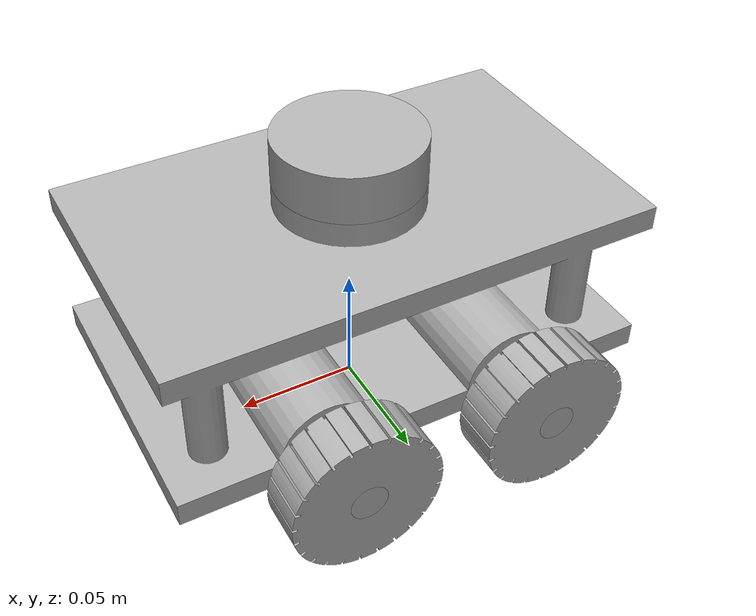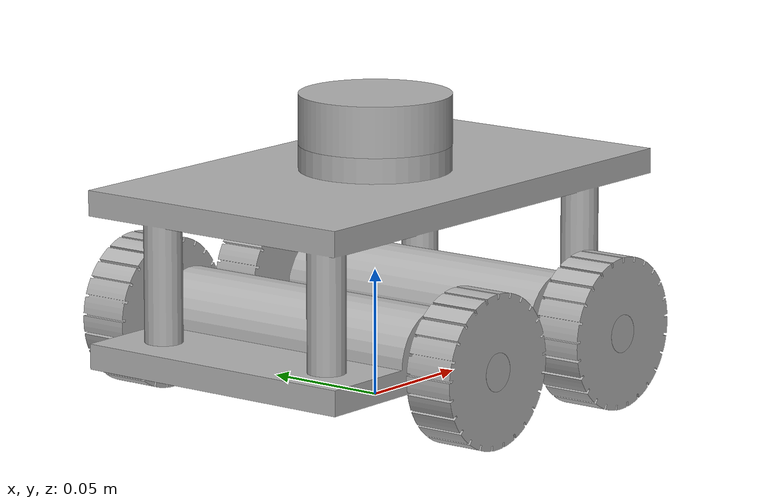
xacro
<?xml version="1.0" ?>
<robot name="ghumi" xmlns:xacro="http://www.ros.org/wiki/xacro">

<xacro:include filename="$(find ghumi_description)/urdf/materials.xacro" />
<xacro:include filename="$(find ghumi_description)/urdf/ghumi.trans" />
<xacro:include filename="$(find ghumi_description)/urdf/ghumi.gazebo" />
<link name="base_link">
  <inertial>
    <origin rpy="0 0 0" xyz="-3.875033510486827e-14 -2.5418389704730536e-17 0.0523602148573551"/>
    <mass value="0.75855661596039"/>
    <inertia ixx="0.001573" ixy="0.0" ixz="0.0" iyy="0.002826" iyz="-0.0" izz="0.003249"/>
  </inertial>
  <visual>
    <origin rpy="0 0 0" xyz="0 0 0"/>
    <geometry>
      <mesh filename="package://ghumi_description/meshes/base_link.stl" scale="0.001 0.001 0.001"/>
    </geometry>
    <material name="silver"/>
  </visual>
  <collision>
    <origin rpy="0 0 0" xyz="0 0 0"/>
    <geometry>
      <mesh filename="package://ghumi_description/meshes/base_link.stl" scale="0.001 0.001 0.001"/>
    </geometry>
  </collision>
</link>

<link name="wheel_1_1">
  <inertial>
    <origin rpy="0 0 0" xyz="5.3290705182007514e-14 0.009999999999999995 -1.734723475976807e-17"/>
    <mass value="0.05512221016696118"/>
    <inertia ixx="1.5e-05" ixy="0.0" ixz="0.0" iyy="2.6e-05" iyz="-0.0" izz="1.5e-05"/>
  </inertial>
  <visual>
    <origin rpy="0 0 0" xyz="-0.04 0.09 -0.03"/>
    <geometry>
      <mesh filename="package://ghumi_description/meshes/wheel_1_1.stl" scale="0.001 0.001 0.001"/>
    </geometry>
    <material name="silver"/>
  </visual>
  <collision>
    <origin rpy="0 0 0" xyz="-0.04 0.09 -0.03"/>
    <geometry>
      <mesh filename="package://ghumi_description/meshes/wheel_1_1.stl" scale="0.001 0.001 0.001"/>
    </geometry>
  </collision>
</link>

<link name="wheel_3_1">
  <inertial>
    <origin rpy="0 0 0" xyz="-5.329764407591142e-14 0.010000000000000009 1.734723475976807e-17"/>
    <mass value="0.055122210166961186"/>
    <inertia ixx="1.5e-05" ixy="0.0" ixz="0.0" iyy="2.6e-05" iyz="-0.0" izz="1.5e-05"/>
  </inertial>
  <visual>
    <origin rpy="0 0 0" xyz="0.04 0.09 -0.03"/>
    <geometry>
      <mesh filename="package://ghumi_description/meshes/wheel_3_1.stl" scale="0.001 0.001 0.001"/>
    </geometry>
    <material name="silver"/>
  </visual>
  <collision>
    <origin rpy="0 0 0" xyz="0.04 0.09 -0.03"/>
    <geometry>
      <mesh filename="package://ghumi_description/meshes/wheel_3_1.stl" scale="0.001 0.001 0.001"/>
    </geometry>
  </collision>
</link>

<link name="wheel_2_1">
  <inertial>
    <origin rpy="0 0 0" xyz="5.330458296981533e-14 -0.009999999999999981 1.734723475976807e-17"/>
    <mass value="0.055122210166961186"/>
    <inertia ixx="1.5e-05" ixy="0.0" ixz="-0.0" iyy="2.6e-05" iyz="-0.0" izz="1.5e-05"/>
  </inertial>
  <visual>
    <origin rpy="0 0 0" xyz="-0.04 -0.09 -0.03"/>
    <geometry>
      <mesh filename="package://ghumi_description/meshes/wheel_2_1.stl" scale="0.001 0.001 0.001"/>
    </geometry>
    <material name="silver"/>
  </visual>
  <collision>
    <origin rpy="0 0 0" xyz="-0.04 -0.09 -0.03"/>
    <geometry>
      <mesh filename="package://ghumi_description/meshes/wheel_2_1.stl" scale="0.001 0.001 0.001"/>
    </geometry>
  </collision>
</link>

<link name="wheel_4_1">
  <inertial>
    <origin rpy="0 0 0" xyz="-5.3290705182007514e-14 -0.010000000000000009 -1.734723475976807e-17"/>
    <mass value="0.05512221016696118"/>
    <inertia ixx="1.5e-05" ixy="-0.0" ixz="-0.0" iyy="2.6e-05" iyz="0.0" izz="1.5e-05"/>
  </inertial>
  <visual>
    <origin rpy="0 0 0" xyz="0.04 -0.09 -0.03"/>
    <geometry>
      <mesh filename="package://ghumi_description/meshes/wheel_4_1.stl" scale="0.001 0.001 0.001"/>
    </geometry>
    <material name="silver"/>
  </visual>
  <collision>
    <origin rpy="0 0 0" xyz="0.04 -0.09 -0.03"/>
    <geometry>
      <mesh filename="package://ghumi_description/meshes/wheel_4_1.stl" scale="0.001 0.001 0.001"/>
    </geometry>
  </collision>
</link>

<link name="lidar_1">
  <inertial>
    <origin rpy="0 0 0" xyz="5.026061718855929e-18 -5.580049443460942e-34 0.009999999999999995"/>
    <mass value="0.059941587830493234"/>
    <inertia ixx="1.5e-05" ixy="0.0" ixz="0.0" iyy="1.5e-05" iyz="0.0" izz="2.7e-05"/>
  </inertial>
  <visual>
    <origin rpy="0 0 0" xyz="-0.0 -0.0 -0.1"/>
    <geometry>
      <mesh filename="package://ghumi_description/meshes/lidar_1.stl" scale="0.001 0.001 0.001"/>
    </geometry>
    <material name="silver"/>
  </visual>
  <collision>
    <origin rpy="0 0 0" xyz="-0.0 -0.0 -0.1"/>
    <geometry>
      <mesh filename="package://ghumi_description/meshes/lidar_1.stl" scale="0.001 0.001 0.001"/>
    </geometry>
  </collision>
</link>

<joint name="wheel1_jt" type="continuous">
  <origin rpy="0 0 0" xyz="0.04 -0.09 0.03"/>
  <parent link="base_link"/>
  <child link="wheel_1_1"/>
  <axis xyz="-0.0 -1.0 0.0"/>
</joint>

<joint name="wheel3_jt" type="continuous">
  <origin rpy="0 0 0" xyz="-0.04 -0.09 0.03"/>
  <parent link="base_link"/>
  <child link="wheel_3_1"/>
  <axis xyz="-0.0 -1.0 0.0"/>
</joint>

<joint name="wheel2_jt" type="continuous">
  <origin rpy="0 0 0" xyz="0.04 0.09 0.03"/>
  <parent link="base_link"/>
  <child link="wheel_2_1"/>
  <axis xyz="0.0 1.0 0.0"/>
</joint>

<joint name="wheel4_jt" type="continuous">
  <origin rpy="0 0 0" xyz="-0.04 0.09 0.03"/>
  <parent link="base_link"/>
  <child link="wheel_4_1"/>
  <axis xyz="0.0 1.0 0.0"/>
</joint>

<joint name="lidar_jt" type="fixed">
  <origin rpy="0 0 0" xyz="0.0 0.0 0.1"/>
  <parent link="base_link"/>
  <child link="lidar_1"/>
</joint>

</robot>

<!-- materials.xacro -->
<robot name="ghumi" xmlns:xacro="http://www.ros.org/wiki/xacro" >

<material name="silver">
  <color rgba="0.700 0.700 0.700 1.000"/>
</material>

</robot>

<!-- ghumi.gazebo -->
<robot name="ghumi" xmlns:xacro="http://www.ros.org/wiki/xacro" >

<xacro:property name="body_color" value="Gazebo/Silver" />

<gazebo>
  <plugin filename="libgazebo_ros_control.so" name="control"/>
</gazebo>
<gazebo reference="base_link">
  <material>${body_color}</material>
  <mu1>0.2</mu1>
  <mu2>0.2</mu2>
  <selfCollide>true</selfCollide>
  <gravity>true</gravity>
</gazebo>

<gazebo reference="wheel_1_1">
  <material>${body_color}</material>
  <mu1>0.2</mu1>
  <mu2>0.2</mu2>
  <selfCollide>true</selfCollide>
</gazebo>

<gazebo reference="wheel_3_1">
  <material>${body_color}</material>
  <mu1>0.2</mu1>
  <mu2>0.2</mu2>
  <selfCollide>true</selfCollide>
</gazebo>

<gazebo reference="wheel_2_1">
  <material>${body_color}</material>
  <mu1>0.2</mu1>
  <mu2>0.2</mu2>
  <selfCollide>true</selfCollide>
</gazebo>

<gazebo reference="wheel_4_1">
  <material>${body_color}</material>
  <mu1>0.2</mu1>
  <mu2>0.2</mu2>
  <selfCollide>true</selfCollide>
</gazebo>

<gazebo reference="lidar_1">
  <material>${body_color}</material>
  <mu1>0.2</mu1>
  <mu2>0.2</mu2>
  <selfCollide>true</selfCollide>
</gazebo>

</robot>
